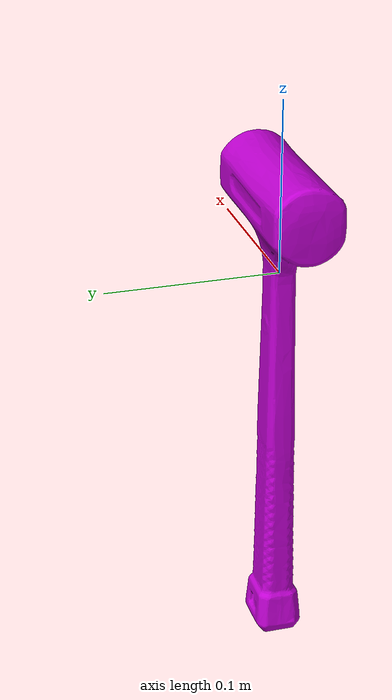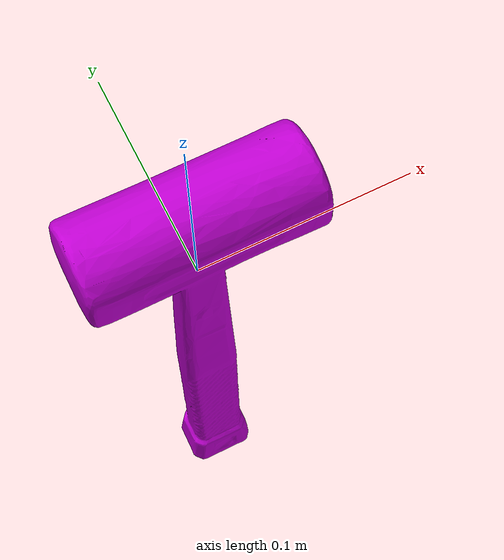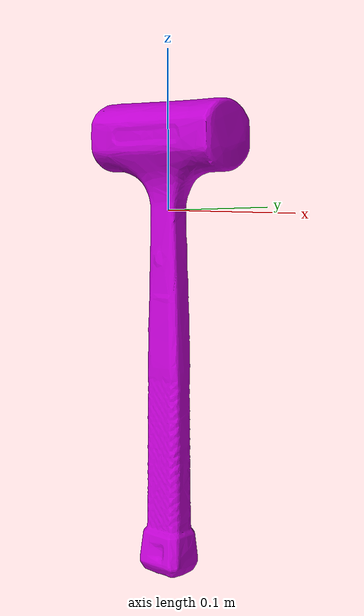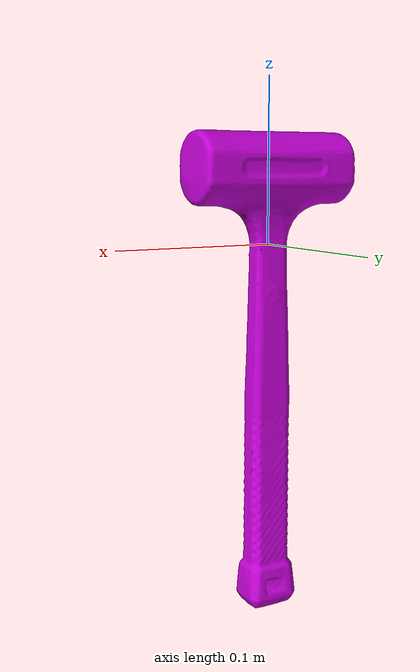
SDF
<?xml version="1.0"?>
<sdf version="1.7">
  <model name="dead_blow_hammer_bright">
    <pose>0 0 0 0 0 0</pose>
    <static>false</static>
    <link name="link">
      <!-- link frame = tool CoM; Z = long axis (+ toward tool end), X = forward, Y = Z x X -->
      <inertial>
        <pose>0 0 0 0 0 0</pose>
        <mass>0.842517</mass>
        <inertia>
          <ixx>6.050316e-03</ixx>
          <ixy>1.651717e-08</ixy>
          <ixz>-5.690064e-07</ixz>
          <iyy>6.511710e-03</iyy>
          <iyz>4.857799e-07</iyz>
          <izz>6.058049e-04</izz>
        </inertia>
      </inertial>
      <collision name="collision">
        <geometry>
          <mesh>
            <uri>model://dead_blow_hammer/meshes/dead_blow_hammer.dae</uri>
          </mesh>
        </geometry>
      </collision>
      <visual name="visual">
        <geometry>
          <mesh>
            <uri>model://dead_blow_hammer/meshes/dead_blow_hammer.dae</uri>
          </mesh>
        </geometry>
        <material>
          <ambient>0.339 0.000 0.369 1.0</ambient>
          <diffuse>0.754 0.000 0.820 1.0</diffuse>
          <specular>0.85 0.85 0.85 1.0</specular>
          <emissive>0 0 0 1.0</emissive>
        </material>
      </visual>
    </link>
  </model>
</sdf>
